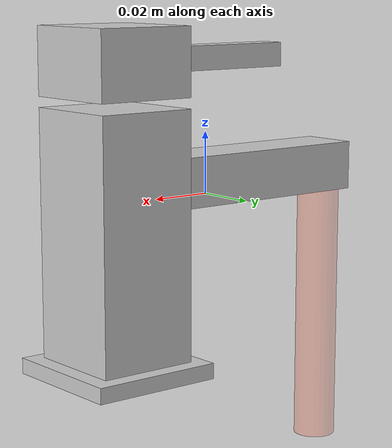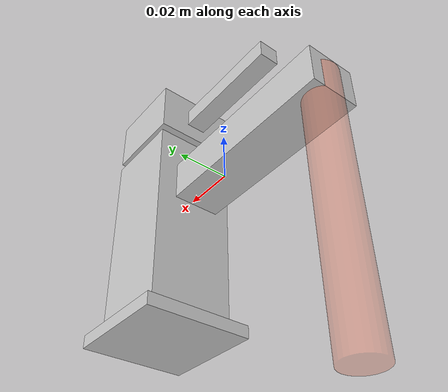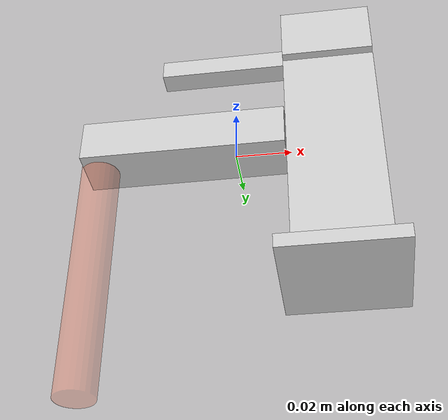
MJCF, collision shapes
<mujoco model="basin_faucet">
    <compiler angle="radian" meshdir="F:/--CodeRepo/--CodeRepo/Research/___Mujoco/mujoco/mujoco/icse27/mujoco_rl_fuzz_2.0/.cache/repos/libero/libero/libero/assets/articulated_objects" texturedir="F:/--CodeRepo/--CodeRepo/Research/___Mujoco/mujoco/mujoco/icse27/mujoco_rl_fuzz_2.0/.cache/repos/libero/libero/libero/assets/articulated_objects" assetdir="F:/--CodeRepo/--CodeRepo/Research/___Mujoco/mujoco/mujoco/icse27/mujoco_rl_fuzz_2.0/.cache/repos/libero/libero/libero/assets/articulated_objects"/>
    <size njmax="500" nconmax="100"/>
    <asset>
        <mesh name="basin_faucet_base_vis" file="basin_faucet/basin_faucet_base/visual/basin_faucet_base_vis.msh" scale="0.02 0.02 0.02"/>
        <mesh name="basin_faucet_movable_vis" file="basin_faucet/basin_faucet_movable/visual/basin_faucet_movable_vis.msh" scale="0.02 0.02 0.02"/>
        <texture file="basin_faucet/ceramic.png" name="ceramic"/>
	<material name="basin_faucet_base" reflectance="0.5" texrepeat="1 1" texture="ceramic" texuniform="false"/>
	<material name="basin_faucet_movable" reflectance="0.5" texrepeat="1 1" texture="ceramic" texuniform="false"/>
    </asset>
    <worldbody>
        <body>
          <body name="object">
	    <site name="hot_water" pos="-0.05 0. -0.04" size="0.007 0.05" rgba="0.984 0.384 0.227 0.3" type="cylinder"/>
	    <site name="cold_water" pos="-0.05 0. -0.04" size="0.007 0.05" rgba="0.831 0.945 0.976 0.3" type="cylinder"/>
	    <body name="base" pos="0 0 0">
	      <geom solimp="0.998 0.998 0.001" solref="0.001 1" density="100" friction="0.95 0.3 0.1" type="mesh" mesh="basin_faucet_base_vis" conaffinity="0" contype="0" group="1" material="basin_faucet_base"/>
	      <geom solimp="0.998 0.998 0.001" solref="0.001 1" density="100" friction="0.95 0.3 0.1" type="box" pos="0.03549 0.00000 -0.00961" quat="0.00000 0.00000 1.00000 0.00000" size="0.01626 0.01660 0.03919" group="0" rgba="0.8 0.8 0.8 0.3"/>
	      <geom solimp="0.998 0.998 0.001" solref="0.001 1" density="100" friction="0.95 0.3 0.1" type="box" pos="0.03549 0.00000 -0.05157" quat="0.70711 0.00000 0.70711 0.00000" size="0.00251 0.02117 0.02136" group="0" rgba="0.8 0.8 0.8 0.3"/>
	      <geom solimp="0.998 0.998 0.001" solref="0.001 1" density="100" friction="0.95 0.3 0.1" type="box" pos="-0.01850 -0.00035 0.00556" quat="0.70711 0.00000 0.70711 0.00000" size="0.00797 0.00954 0.03684" group="0" rgba="0.8 0.8 0.8 0.3"/>
	      <body name="movable" pos="0 0 0.0">
                <inertial pos="0 0 0" mass="3" diaginertia="1 1 1"/>
                <joint name="hinge" pos="0.03548 0 0" axis="0. 0. 1." limited="true" range="-1.5 1.5" damping="10"/>
		<geom solimp="0.998 0.998 0.001" solref="0.001 1" density="100" friction="0.95 0.3 0.1" type="mesh" mesh="basin_faucet_movable_vis" conaffinity="0" contype="0" group="1" material="basin_faucet_movable"/>
		<geom solimp="0.998 0.998 0.001" solref="0.001 1" density="100" friction="0.95 0.3 0.1" type="box" pos="-0.00328 0.00000 0.04356" quat="0.00000 0.70711 0.00000 -0.70711" size="0.00386 0.00405 0.02498" group="0" rgba="0.8 0.8 0.8 0.3"/>
		<geom solimp="0.998 0.998 0.001" solref="0.001 1" density="100" friction="0.95 0.3 0.1" type="box" pos="0.03548 -0.00000 0.04356" quat="0.50000 0.50000 -0.50000 0.50000" size="0.01066 0.01640 0.01644" group="0" rgba="0.8 0.8 0.8 0.3"/>
	      </body>
	    </body>
          </body>
          <site rgba="0 0 0 0" size="0.05" pos="0 0 -0.045" name="bottom_site"/>
          <site rgba="0 0 0 0" size="0.05" pos="0 0 0.045" name="top_site"/>
          <site rgba="0 0 0 0" size="0.05" pos="0.045 0.045 0" name="horizontal_radius_site"/>
        </body>
    </worldbody>
</mujoco>
